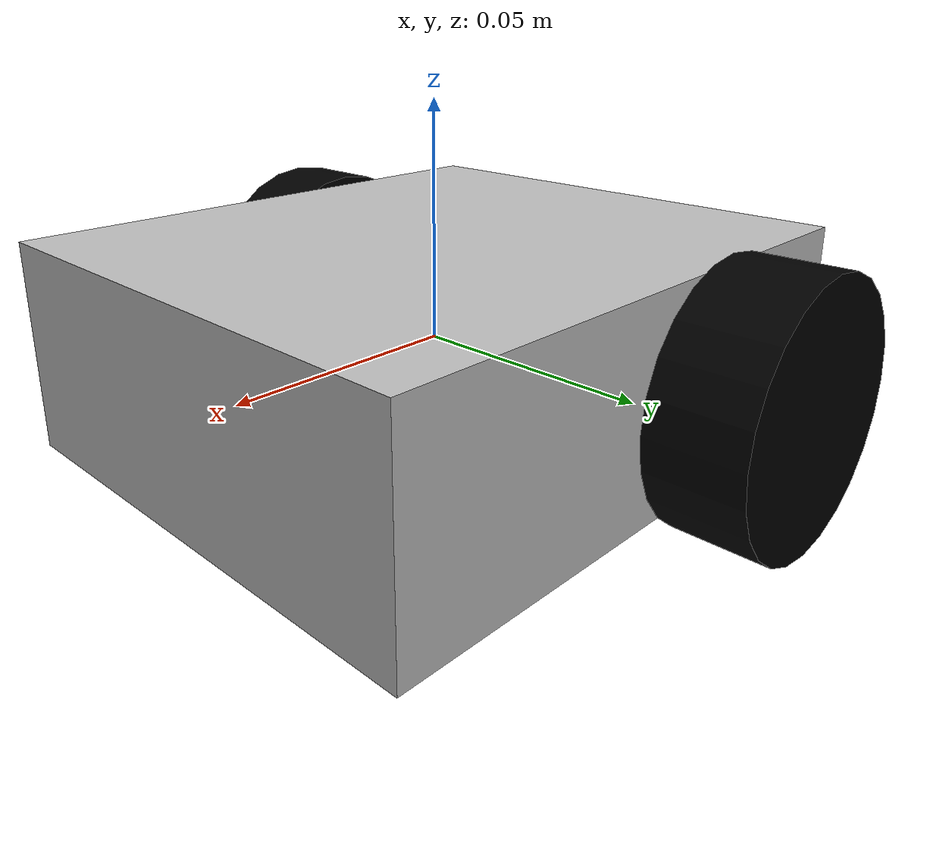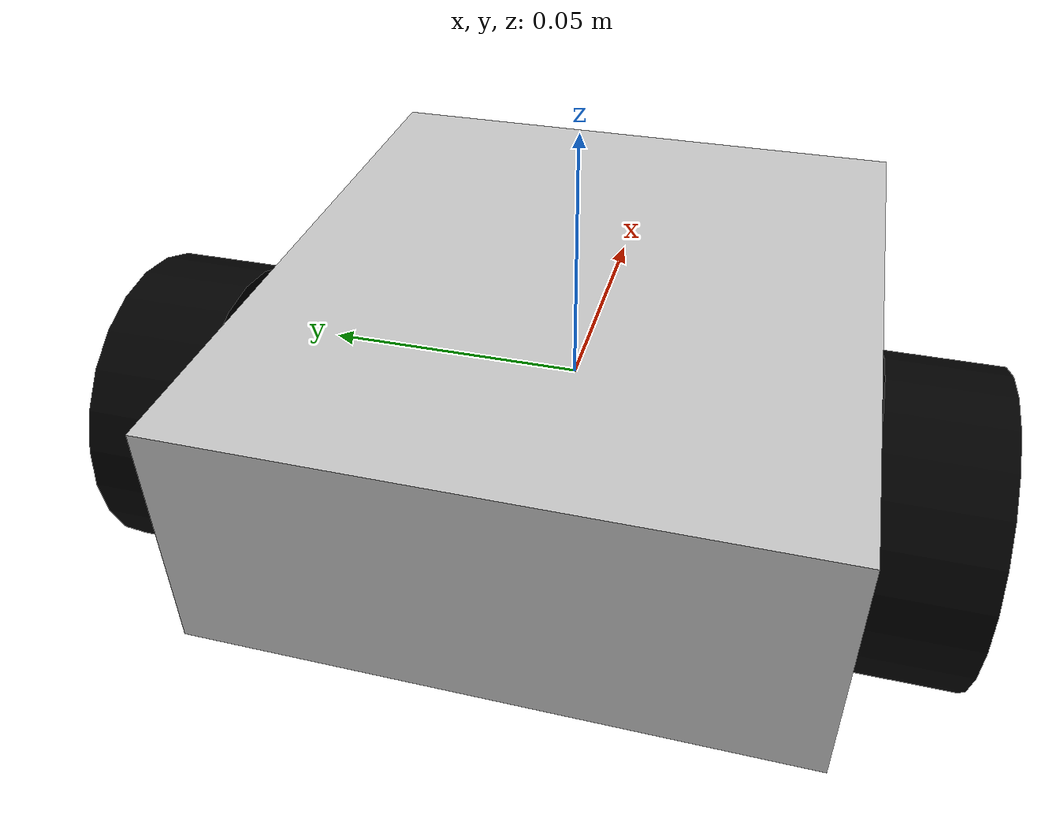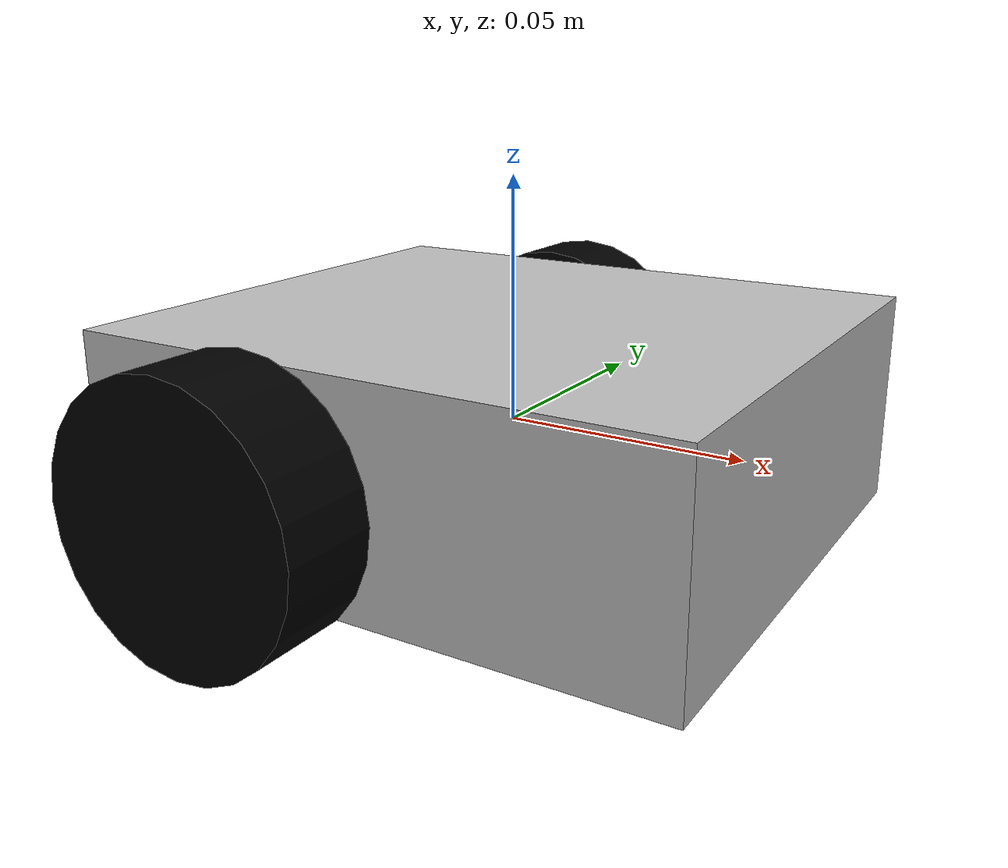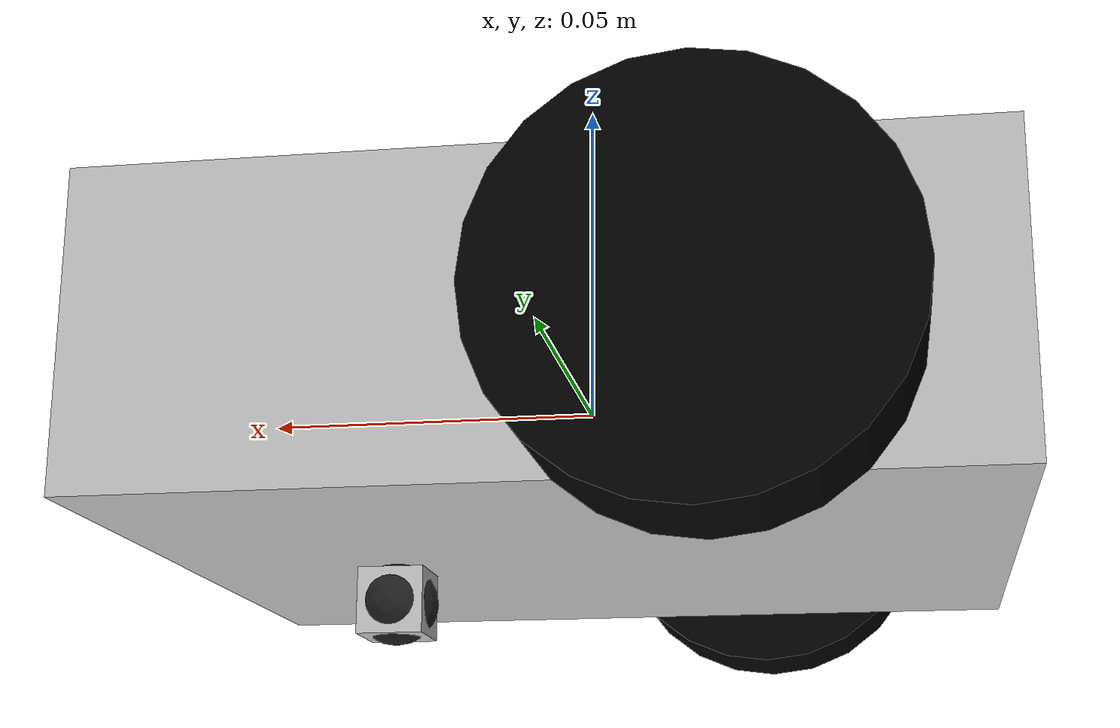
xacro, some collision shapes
<?xml version="1.0" ?>
<robot name="rasbian_with_gazebo_plugin" xmlns:xacro="http://ros.org/wiki/xacro">
    <xacro:include filename="$(find rasberian)/urdf/rasberian.urdf.xacro" />

    <gazebo>
        <plugin name="rasperian_controller" filename="libgazebo_ros_diff_drive.so">
            <alwaysOn>true</alwaysOn>
            <legacyMode>false</legacyMode>
            <updateRate>40</updateRate>
            <leftJoint>back_left_wheel_joint</leftJoint>
            <rightJoint>back_right_wheel_joint</rightJoint>
            <wheelSeparation>0.11</wheelSeparation>
            <wheelDiameter>0.055}</wheelDiameter>
            <torque>20</torque>
            <commandTopic>cmd_vel</commandTopic>
            <odometryTopic>odom</odometryTopic>
            <odometryFrame>odom</odometryFrame>
            <robotBaseFrame>base_link</robotBaseFrame>
        </plugin>
    </gazebo>

</robot>

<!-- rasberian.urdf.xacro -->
<robot name="rasberian" xmlns:xacro="http://ros.org/wiki/xacro">

    <link name="base_link">

        <inertial>
            <origin rpy="0 0 0" xyz="0 0 0"/>
            <mass value="0.33"/>
            <inertia ixx="4.85375e-4" iyy="3.884375e-4" izz="7.74e-4" ixy="0" ixz="0" iyz="0"/>
        </inertial>

        <collision>

            <geometry>
                <box size="0.125 0.11 0.045"/>
            </geometry>

        </collision>

        <visual>
            <origin rpy="0 3.14 -1.57" xyz="0 0 0"/>
            <geometry>
                <mesh filename="package://rasberian/model/rasberian_body.dae" scale="0.001 0.001 0.001">
                </mesh>
            </geometry>

            <material name="silver">
                <script>
                    <uri>/home/ahal/catkin_ws/src/rasberian/model/materials/scripts</uri>
                    <uri>/home/ahal/catkin_ws/src/rasberian/model/materials/texture/model.jpg</uri>
                    <name>rasberian/body</name>
                </script>
            </material>
        </visual>

    </link>

    <link name="back_right_wheel">
         <inertial>
            <mass value="0.03"/>
            <inertia ixx="6.67e-6" iyy="6.67e-6" izz="1.89e-6" ixy="0" ixz="0" iyz="0"/>
        </inertial>
        <collision>
            <geometry>
                <cylinder length="0.02" radius="0.0275"/>
            </geometry>
        </collision>

        <visual>
            <geometry>
                <cylinder length="0.02" radius="0.0275"/>
            </geometry>
            <material name="black">
                <color rgba="0 0 0 1"/>
            </material>
        </visual>
    </link>

    <joint name="back_right_wheel_joint" type="continuous">
        <axis xyz="0 0 1"/>
        <parent link="base_link"/>
        <child link="back_right_wheel"/>
        <origin rpy="-1.5708 0 0" xyz="-0.0225 -0.065 -0.003"/>
    </joint>

    <link name="back_left_wheel">
         <inertial>
            <mass value="0.03"/>
            <inertia ixx="6.67e-6" iyy="6.67e-6" izz="1.89e-6" ixy="0" ixz="0" iyz="0"/>
        </inertial>
        <collision>
            <geometry>
                <cylinder length="0.02" radius="0.0275"/>
            </geometry>
        </collision>

        <visual>
            <geometry>
                <cylinder length="0.02" radius="0.0275"/>
            </geometry>
            <material name="black">
                <color rgba="0 0 0 1"/>
            </material>
        </visual>
    </link>

    <joint name="back_left_wheel_joint" type="continuous">
        <axis xyz="0 0 1"/>
        <parent link="base_link"/>
        <child link="back_left_wheel"/>
        <origin rpy="-1.5708 0 0" xyz="-0.0225 0.065 -0.003"/>
    </joint>

    <link name="caster">
    <visual>
      <origin rpy="1.57079632679 0 0" xyz="0 0 0 "/>
      <geometry>
        <sphere radius="0.00625"/>
      </geometry>
      <material name="Black"/>
    </visual>
    <collision>
      <geometry>
        <sphere radius="0.00625"/>
      </geometry>
      <origin rpy="1.57079632679 0 0" xyz="0 0 0 "/>
    </collision>
    <inertial>
      <mass value="0.005"/>
      <origin xyz="0 0 0"/>
      <inertia ixx="0.0000025" ixy="0.0" ixz="0.0" iyy="0.0000025" iyz="0.0" izz="0.0000025"/>
    </inertial>
  </link>

    <link name="caster_support">

        <inertial>
            <mass value="0.01"/>
            <inertia ixx="4.85375e-4" iyy="3.884375e-4" izz="7.74e-4" ixy="0" ixz="0" iyz="0"/>
        </inertial>

        <collision>

            <geometry>
                <box size="0.01 0.01 0.01"/>
            </geometry>

        </collision>

        <visual>
            <geometry>
                <box size="0.01 0.01 0.01"/>
            </geometry>

            <material name="silver">
                <color rgba="0.75 0.75 0.75 1"/>
            </material>
        </visual>
    </link>

    <joint name="caster_support_joint" type="fixed">
        <parent link="base_link"/>
        <child link="caster_support"/>
        <origin rpy="0 0 0" xyz="0.03 0.0 -0.02825"/>
    </joint>

    <joint name="caster_joint" type="continuous">
        <parent link="caster_support"/>
        <child link="caster"/>
        <origin rpy="0 0 0" xyz="0.0 0.0 0"/>
        <axis xyz="0 1 0"/>
    </joint>

    <!-- gazebo -->
    <gazebo reference="base_link">
        <material>Gazebo/Grey</material>
        <mu1>0.1</mu1>
        <mu2>0.1</mu2>
    </gazebo>
    <gazebo reference="back_left_wheel">
        <material>Gazebo/Black</material>
        <mu1>0.1</mu1>
        <mu2>0.1</mu2>
    </gazebo>
    <gazebo reference="back_right_wheel">
        <material>Gazebo/Black</material>
        <mu1>0.1</mu1>
        <mu2>0.1</mu2>
    </gazebo>
    <gazebo reference="front_left_wheel">
        <material>Gazebo/Black</material>
        <mu1>0.1</mu1>
        <mu2>0.1</mu2>
    </gazebo>
    <gazebo reference="front_right_wheel">
        <material>Gazebo/Black</material>
        <mu1>0.1</mu1>
        <mu2>0.1</mu2>
    </gazebo>

</robot>
